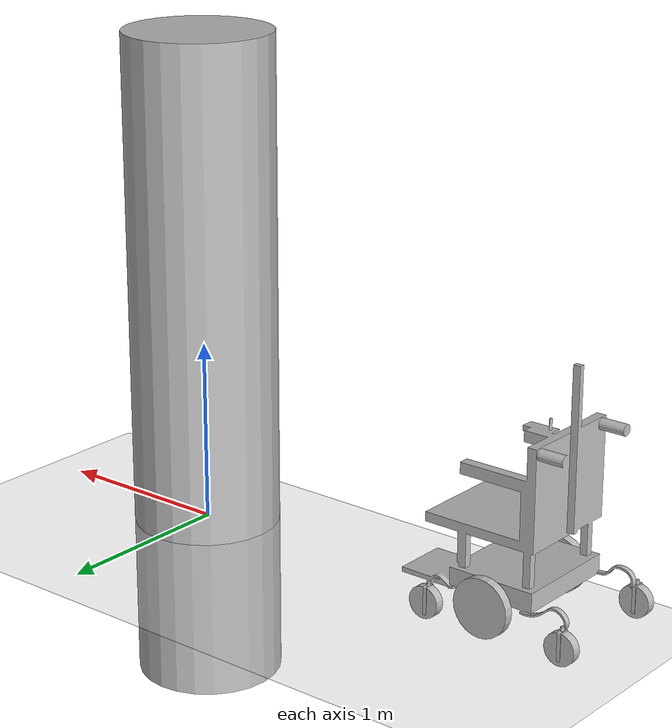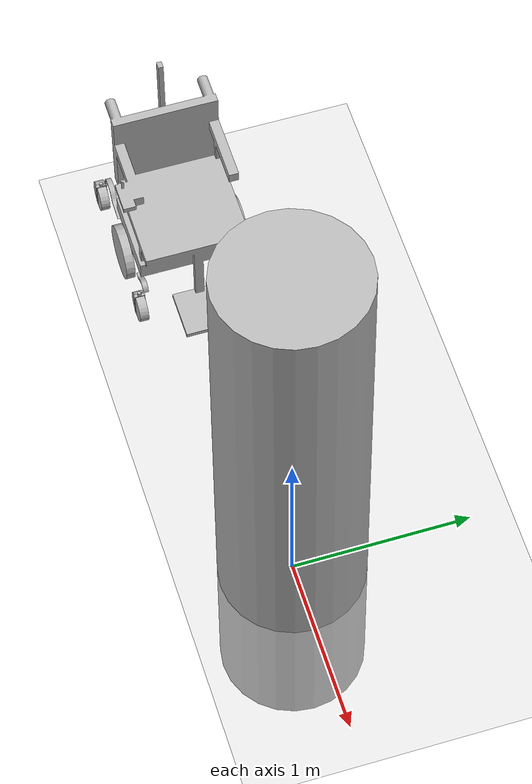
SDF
<?xml version="1.0"?>
<sdf version="1.4">
  <world name="default">
    <physics name="default_physics" default="0" type="ode">
      <max_step_size>0.001</max_step_size>
      <real_time_factor>1</real_time_factor>
      <real_time_update_rate>1000</real_time_update_rate>
      <ode>
        <solver>
          <type>quick</type>
          <iters>50</iters>
          <sor>1.0</sor> <!-- Important, see issue #2209 -->
          <use_dynamic_moi_rescaling>false</use_dynamic_moi_rescaling>
        </solver>
      </ode>
    </physics>
    <include>
      <uri>model://ground_plane</uri>
    </include>
    <include>
      <uri>model://sun</uri>
    </include>
    <model name="Wheelchair_Salsa">
      <include>
        <uri>model://wheelchair</uri>
        <pose>-2.0 0.0 0.1 0 0 0</pose>
      </include>
    </model>
    <include>
      <uri>model://human_ellipse</uri>
      <name>sphere1</name>
      <plugin name="Read_obstacle_state_S1" filename="libRead_obstacle_state.so"/>
    </include>
  </world>
</sdf>

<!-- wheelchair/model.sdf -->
<sdf version="1.6">
  <model name="wheelchair">
    <pose>0 0 0.1 0 0 0</pose>
    <static>false</static>
    <link name="Mainbody">
      <pose>0 0 0 0 0 0</pose>
      <inertial>
        <mass>1</mass>
        <inertia> <!-- inertias are tricky to compute -->
          <!-- http://gazebosim.org/tutorials?tut=inertia&cat=build_robot -->
          <ixx>0.0</ixx>       <!-- for a box: ixx = 0.083 * mass * (y*y + z*z) -->
          <ixy>0.0</ixy>         <!-- for a box: ixy = 0 -->
          <ixz>0.0</ixz>         <!-- for a box: ixz = 0 -->
          <iyy>0.0</iyy>       <!-- for a box: iyy = 0.083 * mass * (x*x + z*z) -->
          <iyz>0.0</iyz>         <!-- for a box: iyz = 0 -->
          <izz>0.0</izz>       <!-- for a box: izz = 0.083 * mass * (x*x + y*y) -->
         <!-- for a box: ixx = 0.083 * mass * (y*y + z*z) -->
         <!-- for a box: ixy = 0 -->
          <!-- for a box: ixz = 0 -->
          <!-- for a box: iyy = 0.083 * mass * (x*x + z*z) -->
          <!-- for a box: iyz = 0 -->
         <!-- for a box: izz = 0.083 * mass * (x*x + y*y) -->
        </inertia>
      </inertial>
      <collision name="collision">
        <geometry>
          <mesh>
            <scale>1 1 1</scale>
            <uri>model://wheelchair/meshes/Wheelchair.stl</uri>
          </mesh>
        </geometry>
        <surface>
          <friction>
            <ode>
              <mu>0</mu>
              <mu2>0</mu2>
              <slip1>0.0</slip1>
              <slip2>0.0</slip2>
            </ode>
          </friction>
        </surface>
      </collision>
      <visual name="visual">
        <geometry>
          <mesh>
            <scale>1 1 1</scale>
            <uri>model://wheelchair/meshes/Wheelchair.stl</uri>
          </mesh>
        </geometry>
      </visual>
      <!-- Add a ray sensor, and give it a name -->
      <sensor type="ray" name="lidar_front">
        <pose>0.4 0 0.2 0 0 0</pose>
        <visualize>true</visualize>
        <update_rate>30</update_rate>
        <ray>
          <scan>
            <horizontal>
              <samples>32</samples>
              <resolution>1</resolution>
              <min_angle>-0.53529248</min_angle>
              <max_angle>0.18622663</max_angle>
            </horizontal>
          </scan>
          <range>
            <min>0.05</min>
            <max>70</max>
            <resolution>0.02</resolution>
          </range>
        </ray>
      </sensor>
      <sensor type="ray" name="lidar_back">
        <pose>-0.4 0 0.2 0 0 3.1415</pose>
        <visualize>true</visualize>
        <update_rate>30</update_rate>
        <ray>
          <scan>
            <horizontal>
              <samples>32</samples>
              <resolution>1</resolution>
              <min_angle>-0.53529248</min_angle>
              <max_angle>0.18622663</max_angle>
            </horizontal>
          </scan>
          <range>
            <min>0.05</min>
            <max>70</max>
            <resolution>0.02</resolution>
          </range>
        </ray>
      </sensor>
    </link>

    <link name="left_main_wheel">
      <pose>-0.091 -0.33 0.109 0 1.57 1.57</pose>
      <collision name="collision">
        <geometry>
          <cylinder>
            <radius>.155</radius>
            <length>.05</length>
          </cylinder>
        </geometry>
        <surface>
          <friction>
            <ode>
              <mu>1000000.0</mu>
              <mu2>1000000.0</mu2>
              <slip1>0.0</slip1>
              <slip2>0.0</slip2>
            </ode>
          </friction>
        </surface>
      </collision>
      <visual name="visual">
        <geometry>
          <cylinder>
            <radius>.155</radius>
            <length>.05</length>
          </cylinder>
        </geometry>
      </visual>
    </link>
    <joint type="revolute" name="left_wheel_main_hinge">
      <pose>0 0 -0.0 0 0 0</pose>
      <child>left_main_wheel</child>
      <parent>Mainbody</parent>
      <axis>
        <xyz>0 0 1</xyz>
      </axis>
      <sensor name="force_torque_left_wheel_main_hinge" type="force_torque">
        <update_rate>100</update_rate>
        <visualize>true</visualize>
      </sensor>
    </joint>
    <link name="right_main_wheel">
      <pose>-0.091 0.33 0.109 0 1.57 1.57</pose>
      <collision name="collision">
        <geometry>
          <cylinder>
            <radius>.155</radius>
            <length>.05</length>
          </cylinder>
        </geometry>
        <surface>
          <friction>
            <ode>
              <mu>1000000.0</mu>
              <mu2>1000000.0</mu2>
              <slip1>0.0</slip1>
              <slip2>0.0</slip2>
            </ode>
          </friction>
        </surface>
      </collision>
      <visual name="visual">
        <geometry>
          <cylinder>
            <radius>.155</radius>
            <length>.05</length>
          </cylinder>
        </geometry>
      </visual>
    </link>
    <joint type="revolute" name="right_wheel_main_hinge">
      <pose>0 0 -0.0 0 0 0</pose>
      <child>right_main_wheel</child>
      <parent>Mainbody</parent>
      <axis>
        <xyz>0 0 -1</xyz>
      </axis>
      <sensor name="force_torque_right_wheel_main_hinge" type="force_torque">
        <update_rate>100</update_rate>
        <visualize>true</visualize>
      </sensor>
    </joint>

    <link name="left_front_pin">
      <pose>0.241 -0.33 0.149 0 3.14 1.57</pose>
      <collision name="collision">
        <geometry>
          <mesh>
            <scale>0.01 0.01 0.01</scale>
            <uri>model://wheelchair/meshes/Hinge.stl</uri>
          </mesh>
        </geometry>
        <surface>
          <friction>
            <ode>
              <mu>0</mu>
              <mu2>0</mu2>
              <slip1>0.0</slip1>
              <slip2>0.0</slip2>
            </ode>
          </friction>
        </surface>
      </collision>
      <visual name="visual">
        <geometry>
          <mesh>
            <scale>0.01 0.01 0.01</scale>
            <uri>model://wheelchair/meshes/Hinge.stl</uri>
          </mesh>
        </geometry>
      </visual>
    </link>

    <joint type="revolute" name="left_wheel_front_hinge_pin">
      <pose>0 0 0 0 0 0</pose>
      <child>left_front_pin</child>
      <parent>Mainbody</parent>
      <axis>
        <xyz>0 0 1</xyz>
      </axis>
      <sensor name="force_torque_left_wheel_front_hinge_pin" type="force_torque">
<!-- Activate this line once you want to read the sensor directly -->
        <update_rate>100</update_rate>
        <visualize>true</visualize>
      </sensor>
    </joint>

    <link name="left_front_wheel">
      <pose>0.245 -0.33 0.039 0 1.57 1.57</pose>
      <collision name="collision">
        <geometry>
          <cylinder>
            <radius>.085</radius>
            <length>.05</length>
          </cylinder>
        </geometry>
        <surface>
          <friction>
            <ode>
              <mu>0.0</mu>
              <mu2>0.0</mu2>
              <slip1>0.0</slip1>
              <slip2>0.0</slip2>
            </ode>
          </friction>
        </surface>
      </collision>
      <visual name="visual">
        <geometry>
          <cylinder>
            <radius>.085</radius>
            <length>.05</length>
          </cylinder>
        </geometry>
      </visual>
    </link>
    <joint type="revolute" name="left_wheel_front_hinge">
      <pose>0 0 0.0 0 0 0</pose>
      <child>left_front_wheel</child>
      <parent>left_front_pin</parent>
      <axis>
        <xyz>0 0 1</xyz>
      </axis>
      <sensor name="force_torque_left_wheel_front_hinge" type="force_torque">
        <update_rate>100</update_rate>
        <visualize>true</visualize>
      </sensor>
    </joint>

    <link name="right_front_pin">
      <pose>0.241 0.33 0.149 0 3.14 1.57</pose>
      <collision name="collision">
        <geometry>
          <mesh>
            <scale>0.01 0.01 0.01</scale>
            <uri>model://wheelchair/meshes/Hinge.stl</uri>
          </mesh>
        </geometry>
        <surface>
          <friction>
            <ode>
              <mu>0</mu>
              <mu2>0</mu2>
              <slip1>0.0</slip1>
              <slip2>0.0</slip2>
            </ode>
          </friction>
        </surface>
      </collision>
      <visual name="visual">
        <geometry>
          <mesh>
            <scale>0.01 0.01 0.01</scale>
            <uri>model://wheelchair/meshes/Hinge.stl</uri>
          </mesh>
        </geometry>
      </visual>
    </link>

    <joint type="revolute" name="right_wheel_front_hinge_pin">
      <pose>0 0 0 0 0 0</pose>
      <child>right_front_pin</child>
      <parent>Mainbody</parent>
      <axis>
        <xyz>0 0 1</xyz>
      </axis>
      <sensor name="force_torque_right_wheel_front_hinge_pin" type="force_torque">
        <update_rate>100</update_rate>
        <visualize>true</visualize>
      </sensor>
    </joint>

    <link name="right_front_wheel">
      <pose>0.245 0.33 0.039 0 1.57 1.57</pose>
      <collision name="collision">
        <geometry>
          <cylinder>
            <radius>.085</radius>
            <length>.05</length>
          </cylinder>
        </geometry>
        <surface>
          <friction>
            <ode>
              <mu>0.0</mu>
              <mu2>0.0</mu2>
              <slip1>0.0</slip1>
              <slip2>0.0</slip2>
            </ode>
          </friction>
        </surface>
      </collision>
      <visual name="visual">
        <geometry>
          <cylinder>
            <radius>.085</radius>
            <length>.05</length>
          </cylinder>
        </geometry>
      </visual>
    </link>
    <joint type="revolute" name="right_wheel_front_hinge">
      <pose>0 0 0 0 0 0</pose>
      <child>right_front_wheel</child>
      <parent>right_front_pin</parent>
      <axis>
        <xyz>0 0 -1</xyz>
      </axis>
      <sensor name="force_torque_right_wheel_front_hinge" type="force_torque">
        <update_rate>100</update_rate>
        <visualize>true</visualize>
      </sensor>
    </joint>

    <link name="left_rear_wheel">
      <pose>-0.548 -0.33 0.039 0 1.57 1.57</pose>
      <collision name="collision">
        <geometry>
          <cylinder>
            <radius>.085</radius>
            <length>.05</length>
          </cylinder>
        </geometry>
        <surface>
          <friction>
            <ode>
              <mu>0.0</mu>
              <mu2>0.0</mu2>
              <slip1>0.0</slip1>
              <slip2>0.0</slip2>
            </ode>
          </friction>
        </surface>
      </collision>
      <visual name="visual">
        <geometry>
          <cylinder>
            <radius>.085</radius>
            <length>.05</length>
          </cylinder>
        </geometry>
      </visual>
    </link>
    <joint type="revolute" name="left_wheel_rear_hinge">
      <pose>0 0 0 0 0 0</pose>
      <child>left_rear_wheel</child>
      <parent>left_rear_pin</parent>
      <axis>
        <xyz>0 0 1</xyz>
      </axis>
      <sensor name="force_torque_left_wheel_rear_hinge" type="force_torque">
        <update_rate>100</update_rate>
        <visualize>true</visualize>
      </sensor>
    </joint>

    <link name="right_rear_wheel">
      <pose>-0.548 0.33 0.039 0 1.57 1.57</pose>
      <collision name="collision">
        <geometry>
          <cylinder>
            <radius>.085</radius>
            <length>.05</length>
          </cylinder>
        </geometry>
        <surface>
          <friction>
            <ode>
              <mu>0.0</mu>
              <mu2>0.0</mu2>
              <slip1>0.0</slip1>
              <slip2>0.0</slip2>
            </ode>
          </friction>
        </surface>
      </collision>
      <visual name="visual">
        <geometry>
          <cylinder>
            <radius>.085</radius>
            <length>.05</length>
          </cylinder>
        </geometry>
      </visual>
    </link>
    <joint type="revolute" name="right_wheel_rear_hinge">
      <pose>0 0 0 0 0 0</pose>
      <child>right_rear_wheel</child>
      <parent>right_rear_pin</parent>
      <axis>
        <xyz>0 0 -1</xyz>
      </axis>
      <sensor name="force_torque_right_wheel_rear_hinge" type="force_torque">
        <update_rate>100</update_rate>
        <visualize>true</visualize>
      </sensor>
    </joint>

    <link name="right_rear_pin">
      <pose>-0.54 0.33 0.15 0 3.14 1.57</pose>
      <collision name="collision">
        <geometry>
          <mesh>
            <scale>0.01 0.01 0.01</scale>
            <uri>model://wheelchair/meshes/Hinge.stl</uri>
          </mesh>
        </geometry>
        <surface>
          <friction>
            <ode>
              <mu>0</mu>
              <mu2>0</mu2>
              <slip1>0.0</slip1>
              <slip2>0.0</slip2>
            </ode>
          </friction>
        </surface>
      </collision>
      <visual name="visual">
        <geometry>
          <mesh>
            <scale>0.01 0.01 0.01</scale>
            <uri>model://wheelchair/meshes/Hinge.stl</uri>
          </mesh>
        </geometry>
      </visual>
    </link>

    <joint type="revolute" name="right_wheel_rear_hinge_pin">
      <pose>0 0 0 0 0 0</pose>
      <child>right_rear_pin</child>
      <parent>Mainbody</parent>
      <axis>
        <xyz>0 0 1</xyz>
      </axis>
      <sensor name="force_torque_right_wheel_rear_hinge_pin" type="force_torque">
        <update_rate>100</update_rate>
        <visualize>true</visualize>
      </sensor>
    </joint>

    <link name="left_rear_pin">
      <pose>-0.54 -0.33 0.15 0 3.14 1.57</pose>
      <collision name="collision">
        <geometry>
          <mesh>
            <scale>0.01 0.01 0.01</scale>
            <uri>model://wheelchair/meshes/Hinge.stl</uri>
          </mesh>
        </geometry>
        <surface>
          <friction>
            <ode>
              <mu>0</mu>
              <mu2>0</mu2>
              <slip1>0.0</slip1>
              <slip2>0.0</slip2>
            </ode>
          </friction>
        </surface>
      </collision>
      <visual name="visual">
        <geometry>
          <mesh>
            <scale>0.01 0.01 0.01</scale>
            <uri>model://wheelchair/meshes/Hinge.stl</uri>
          </mesh>
        </geometry>
      </visual>
    </link>

    <joint type="revolute" name="left_wheel_rear_hinge_pin">
      <pose>0 0 0 0 0 0</pose>
      <child>left_rear_pin</child>
      <parent>Mainbody</parent>
      <axis>
        <xyz>0 0 1</xyz>
      </axis>
      <sensor name="force_torque_left_wheel_rear_hinge_pin" type="force_torque">
        <update_rate>100</update_rate>
        <visualize>true</visualize>
      </sensor>
    </joint>
     <plugin name="Read_joint_state" filename="libRead_joint_state.so"/>
      <plugin name="Read_torque_force" filename="libRead_torque_force.so">
        <updateRate>100.0</updateRate>
        <topicName>force_torque_left_wheel_main_hinge</topicName>
        <jointName>wheelchair::left_wheel_main_hinge</jointName>
      </plugin>
      <plugin name="Read_torque_force" filename="libRead_torque_force.so">
        <updateRate>100.0</updateRate>
        <topicName>force_torque_right_wheel_main_hinge</topicName>
        <jointName>wheelchair::right_wheel_main_hinge</jointName>
      </plugin>
      <plugin name="Read_torque_force" filename="libRead_torque_force.so">
        <updateRate>100.0</updateRate>
        <topicName>force_torque_left_wheel_front_hinge_pin</topicName>
        <jointName>wheelchair::left_wheel_front_hinge_pin</jointName>
      </plugin>
      <plugin name="Read_torque_force" filename="libRead_torque_force.so">
        <updateRate>100.0</updateRate>
        <topicName>force_torque_left_wheel_front_hinge</topicName>
        <jointName>wheelchair::left_wheel_front_hinge</jointName>
      </plugin>
      <plugin name="Read_torque_force" filename="libRead_torque_force.so">
        <updateRate>100.0</updateRate>
        <topicName>force_torque_right_wheel_front_hinge_pin</topicName>
        <jointName>wheelchair::right_wheel_front_hinge_pin</jointName>
      </plugin>
      <plugin name="Read_torque_force" filename="libRead_torque_force.so">
        <updateRate>100.0</updateRate>
        <topicName>force_torque_right_wheel_front_hinge</topicName>
        <jointName>wheelchair::right_wheel_front_hinge</jointName>
      </plugin>
      <plugin name="Read_torque_force" filename="libRead_torque_force.so">
        <updateRate>100.0</updateRate>
        <topicName>force_torque_left_wheel_rear_hinge</topicName>
        <jointName>wheelchair::left_wheel_rear_hinge</jointName>
      </plugin>
      <plugin name="Read_torque_force" filename="libRead_torque_force.so">
        <updateRate>100.0</updateRate>
        <topicName>force_torque_right_wheel_rear_hinge</topicName>
        <jointName>wheelchair::right_wheel_rear_hinge</jointName>
      </plugin>
      <plugin name="Read_torque_force" filename="libRead_torque_force.so">
        <updateRate>100.0</updateRate>
        <topicName>force_torque_right_wheel_rear_hinge_pin</topicName>
        <jointName>wheelchair::right_wheel_rear_hinge_pin</jointName>
      </plugin>
      <plugin name="Read_torque_force" filename="libRead_torque_force.so">
        <updateRate>100.0</updateRate>
        <topicName>force_torque_left_wheel_rear_hinge_pin</topicName>
        <jointName>wheelchair::left_wheel_rear_hinge_pin</jointName>
      </plugin>
  </model>
</sdf>

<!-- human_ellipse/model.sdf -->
<sdf version="1.4">
<model name="human_ellipse">
  <pose>0.0 0 0.9 0 0 0</pose>
  <static>true</static>
    <link name="link">
      <inertial>
        <mass>1000.0</mass>
        <inertia> <!-- Look up -->
          <!-- http://gazebosim.org/tutorials?tut=inertia&cat=build_robot -->
          <ixx>83</ixx>       <!-- for a box: ixx = 0.083 * mass * (y*y + z*z) -->
          <ixy>0.0</ixy>         <!-- for a box: ixy = 0 -->
          <ixz>0.0</ixz>         <!-- for a box: ixz = 0 -->
          <iyy>83</iyy>       <!-- for a box: iyy = 0.083 * mass * (x*x + z*z) -->
          <iyz>0.0</iyz>         <!-- for a box: iyz = 0 -->
          <izz>83</izz>       <!-- for a box: izz = 0.083 * mass * (x*x + y*y) -->
        </inertia>
      </inertial>
      <collision name="collision">
          <geometry>
            <cylinder>
            <length>3.6</length>
            <radius>0.3</radius>
          </cylinder>
          <sphere>
            <radius>.4</radius>
          </sphere>
        </geometry>
      </collision>
      <visual name="visual">
        <geometry>
          <cylinder>
            <length>3.6</length>
            <radius>0.4</radius>
          </cylinder>
        </geometry>
      </visual>
    </link>
  </model>
</sdf>
